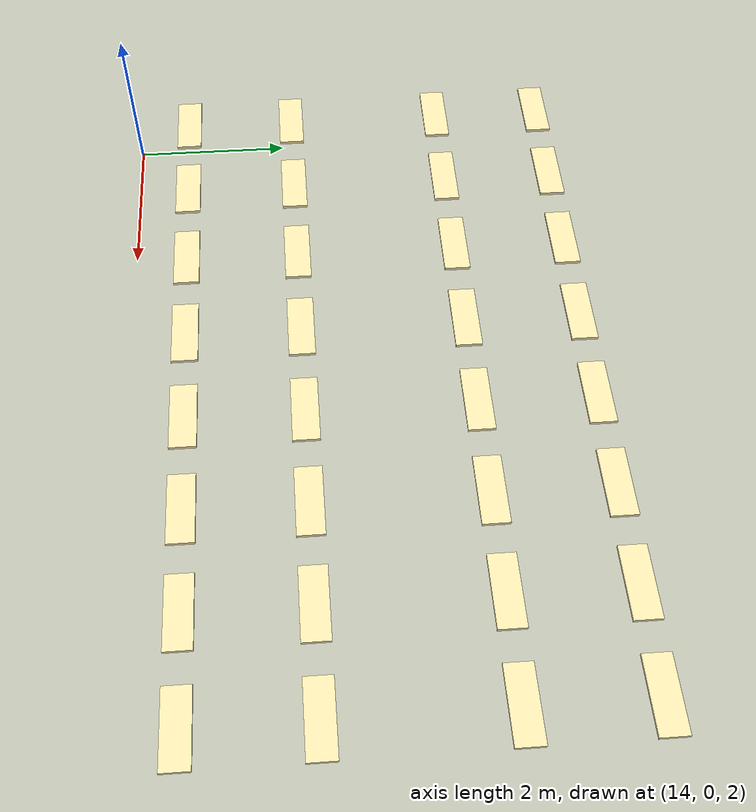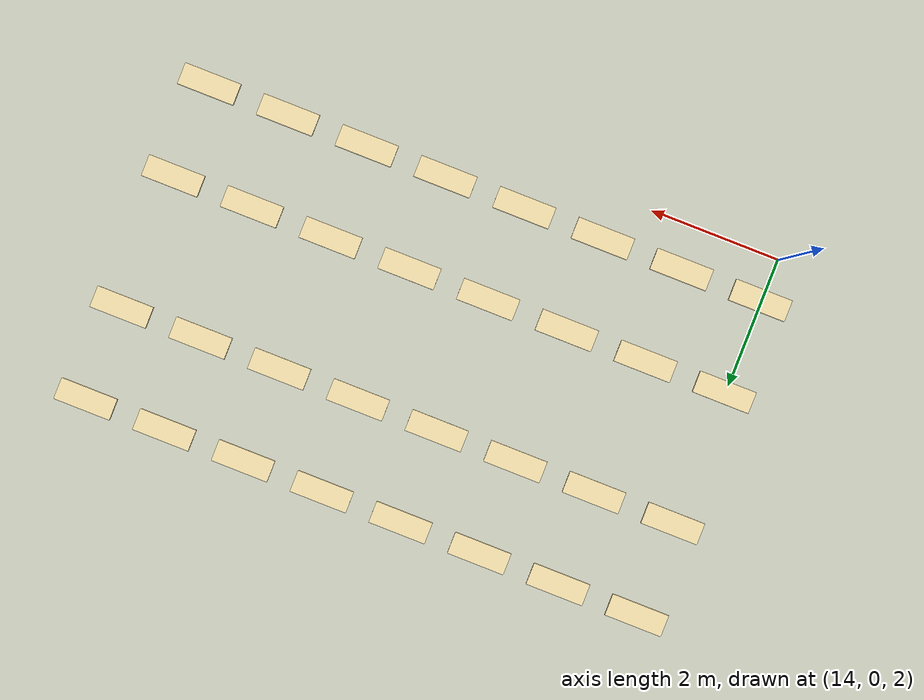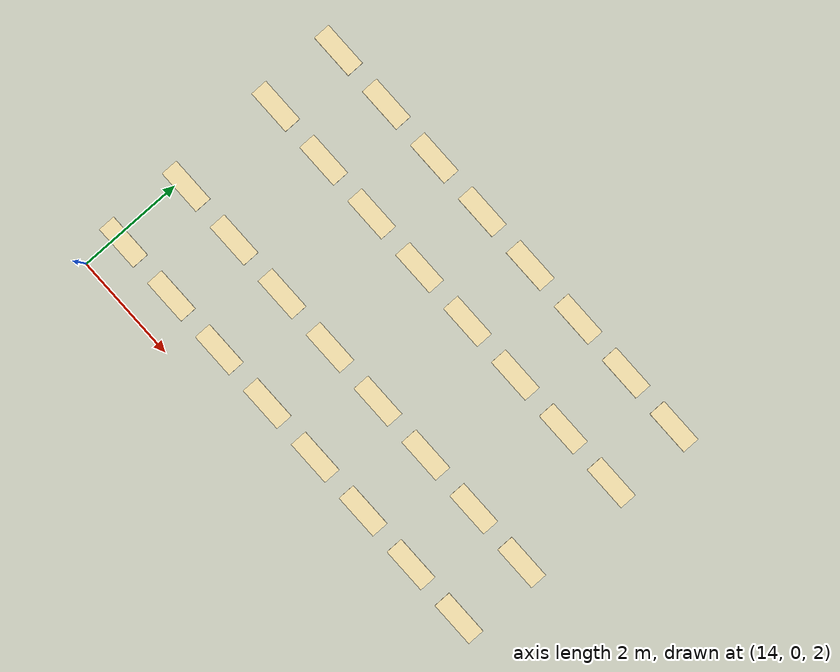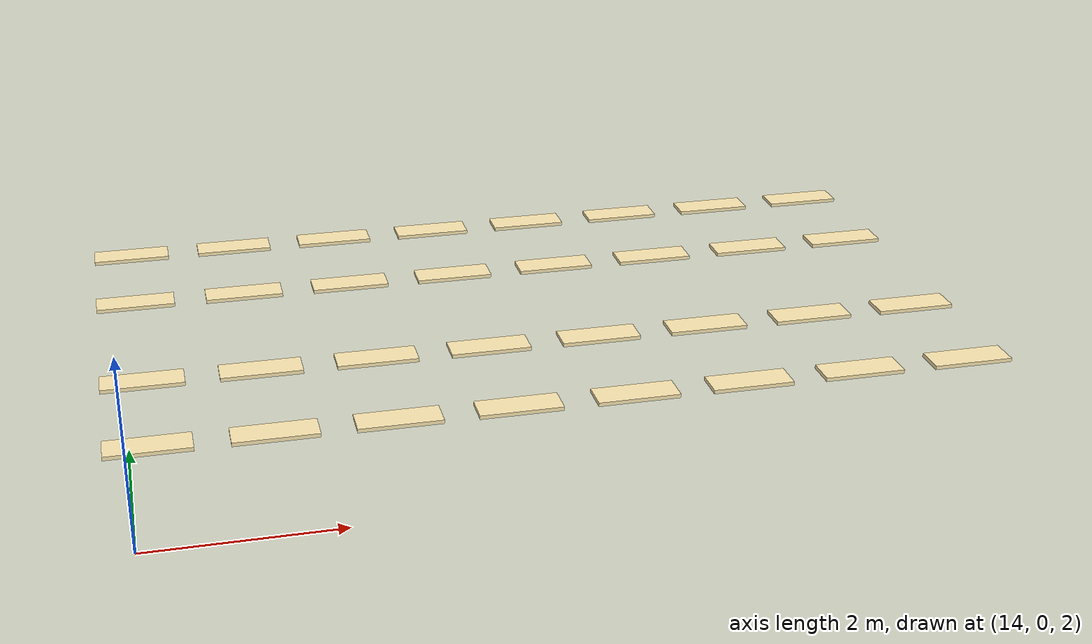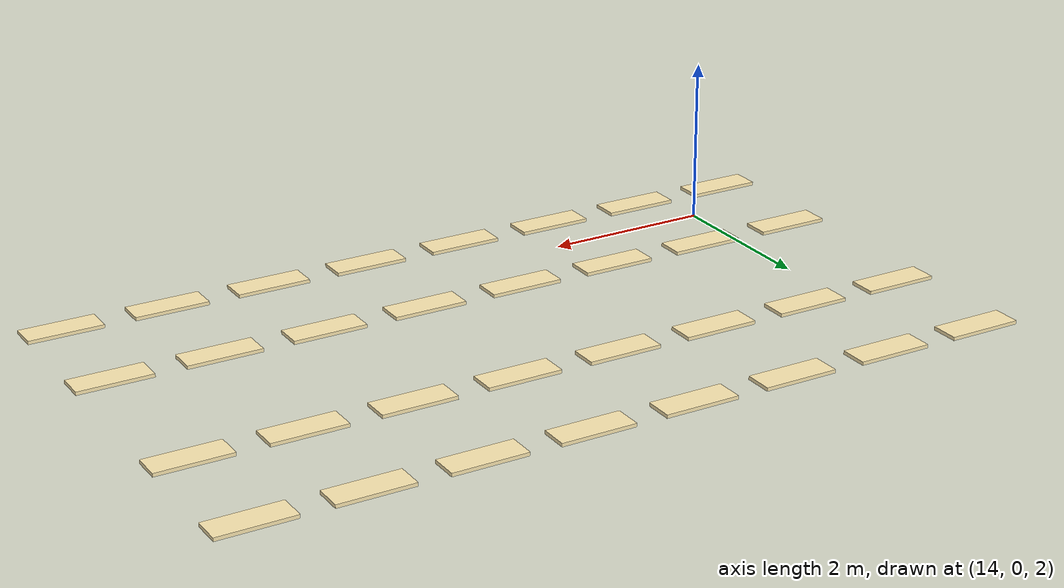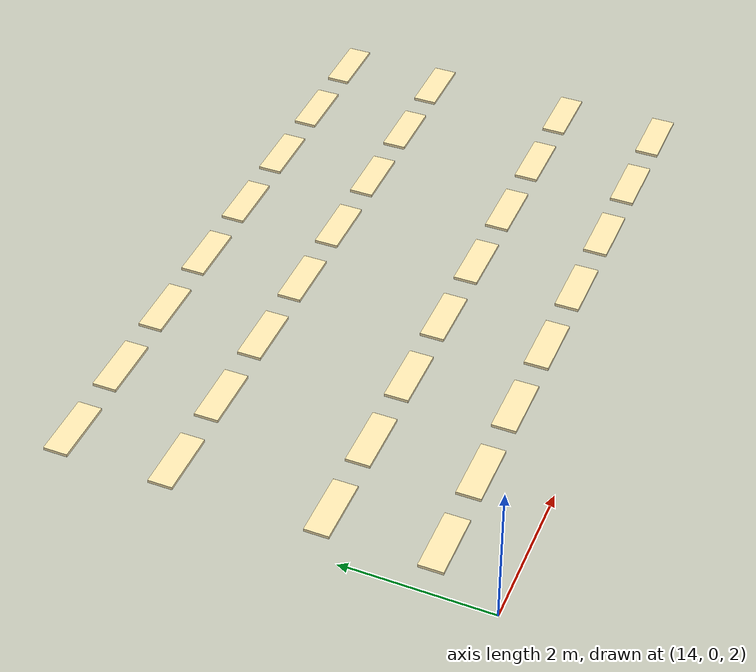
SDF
<sdf version="1.10">
 <world name="room_427">
  <model name="ceiling_lights_zone3">
   <static>true</static>
   <link name="ceiling_lights_zone3_r1_c1">
    <pose>14.2 0.75 2.70 0 0 0</pose>
    <visual name="visual">
     <geometry><box><size>0.85 0.32 0.04</size></box></geometry>
     <material>
      <ambient>1.0 0.92 0.7 1</ambient>
      <diffuse>1.0 0.92 0.7 1</diffuse>
      <emissive>1.0 0.92 0.7 1</emissive>
     </material>
    </visual>
   </link>
   <link name="ceiling_lights_zone3_r1_c2">
    <pose>14.2 2.15 2.70 0 0 0</pose>
    <visual name="visual">
     <geometry><box><size>0.85 0.32 0.04</size></box></geometry>
     <material>
      <ambient>1.0 0.92 0.7 1</ambient>
      <diffuse>1.0 0.92 0.7 1</diffuse>
      <emissive>1.0 0.92 0.7 1</emissive>
     </material>
    </visual>
   </link>
   <link name="ceiling_lights_zone3_r1_c3">
    <pose>14.2 4.15 2.70 0 0 0</pose>
    <visual name="visual">
     <geometry><box><size>0.85 0.32 0.04</size></box></geometry>
     <material>
      <ambient>1.0 0.92 0.7 1</ambient>
      <diffuse>1.0 0.92 0.7 1</diffuse>
      <emissive>1.0 0.92 0.7 1</emissive>
     </material>
    </visual>
   </link>
   <link name="ceiling_lights_zone3_r1_c4">
    <pose>14.2 5.55 2.70 0 0 0</pose>
    <visual name="visual">
     <geometry><box><size>0.85 0.32 0.04</size></box></geometry>
     <material>
      <ambient>1.0 0.92 0.7 1</ambient>
      <diffuse>1.0 0.92 0.7 1</diffuse>
      <emissive>1.0 0.92 0.7 1</emissive>
     </material>
    </visual>
   </link>
   <link name="ceiling_lights_zone3_r2_c1">
    <pose>15.4 0.75 2.70 0 0 0</pose>
    <visual name="visual">
     <geometry><box><size>0.85 0.32 0.04</size></box></geometry>
     <material>
      <ambient>1.0 0.92 0.7 1</ambient>
      <diffuse>1.0 0.92 0.7 1</diffuse>
      <emissive>1.0 0.92 0.7 1</emissive>
     </material>
    </visual>
   </link>
   <link name="ceiling_lights_zone3_r2_c2">
    <pose>15.4 2.15 2.70 0 0 0</pose>
    <visual name="visual">
     <geometry><box><size>0.85 0.32 0.04</size></box></geometry>
     <material>
      <ambient>1.0 0.92 0.7 1</ambient>
      <diffuse>1.0 0.92 0.7 1</diffuse>
      <emissive>1.0 0.92 0.7 1</emissive>
     </material>
    </visual>
   </link>
   <link name="ceiling_lights_zone3_r2_c3">
    <pose>15.4 4.15 2.70 0 0 0</pose>
    <visual name="visual">
     <geometry><box><size>0.85 0.32 0.04</size></box></geometry>
     <material>
      <ambient>1.0 0.92 0.7 1</ambient>
      <diffuse>1.0 0.92 0.7 1</diffuse>
      <emissive>1.0 0.92 0.7 1</emissive>
     </material>
    </visual>
   </link>
   <link name="ceiling_lights_zone3_r2_c4">
    <pose>15.4 5.55 2.70 0 0 0</pose>
    <visual name="visual">
     <geometry><box><size>0.85 0.32 0.04</size></box></geometry>
     <material>
      <ambient>1.0 0.92 0.7 1</ambient>
      <diffuse>1.0 0.92 0.7 1</diffuse>
      <emissive>1.0 0.92 0.7 1</emissive>
     </material>
    </visual>
   </link>
   <link name="ceiling_lights_zone3_r3_c1">
    <pose>16.6 0.75 2.70 0 0 0</pose>
    <visual name="visual">
     <geometry><box><size>0.85 0.32 0.04</size></box></geometry>
     <material>
      <ambient>1.0 0.92 0.7 1</ambient>
      <diffuse>1.0 0.92 0.7 1</diffuse>
      <emissive>1.0 0.92 0.7 1</emissive>
     </material>
    </visual>
   </link>
   <link name="ceiling_lights_zone3_r3_c2">
    <pose>16.6 2.15 2.70 0 0 0</pose>
    <visual name="visual">
     <geometry><box><size>0.85 0.32 0.04</size></box></geometry>
     <material>
      <ambient>1.0 0.92 0.7 1</ambient>
      <diffuse>1.0 0.92 0.7 1</diffuse>
      <emissive>1.0 0.92 0.7 1</emissive>
     </material>
    </visual>
   </link>
   <link name="ceiling_lights_zone3_r3_c3">
    <pose>16.6 4.15 2.70 0 0 0</pose>
    <visual name="visual">
     <geometry><box><size>0.85 0.32 0.04</size></box></geometry>
     <material>
      <ambient>1.0 0.92 0.7 1</ambient>
      <diffuse>1.0 0.92 0.7 1</diffuse>
      <emissive>1.0 0.92 0.7 1</emissive>
     </material>
    </visual>
   </link>
   <link name="ceiling_lights_zone3_r3_c4">
    <pose>16.6 5.55 2.70 0 0 0</pose>
    <visual name="visual">
     <geometry><box><size>0.85 0.32 0.04</size></box></geometry>
     <material>
      <ambient>1.0 0.92 0.7 1</ambient>
      <diffuse>1.0 0.92 0.7 1</diffuse>
      <emissive>1.0 0.92 0.7 1</emissive>
     </material>
    </visual>
   </link>
   <link name="ceiling_lights_zone3_r4_c1">
    <pose>17.8 0.75 2.70 0 0 0</pose>
    <visual name="visual">
     <geometry><box><size>0.85 0.32 0.04</size></box></geometry>
     <material>
      <ambient>1.0 0.92 0.7 1</ambient>
      <diffuse>1.0 0.92 0.7 1</diffuse>
      <emissive>1.0 0.92 0.7 1</emissive>
     </material>
    </visual>
   </link>
   <link name="ceiling_lights_zone3_r4_c2">
    <pose>17.8 2.15 2.70 0 0 0</pose>
    <visual name="visual">
     <geometry><box><size>0.85 0.32 0.04</size></box></geometry>
     <material>
      <ambient>1.0 0.92 0.7 1</ambient>
      <diffuse>1.0 0.92 0.7 1</diffuse>
      <emissive>1.0 0.92 0.7 1</emissive>
     </material>
    </visual>
   </link>
   <link name="ceiling_lights_zone3_r4_c3">
    <pose>17.8 4.15 2.70 0 0 0</pose>
    <visual name="visual">
     <geometry><box><size>0.85 0.32 0.04</size></box></geometry>
     <material>
      <ambient>1.0 0.92 0.7 1</ambient>
      <diffuse>1.0 0.92 0.7 1</diffuse>
      <emissive>1.0 0.92 0.7 1</emissive>
     </material>
    </visual>
   </link>
   <link name="ceiling_lights_zone3_r4_c4">
    <pose>17.8 5.55 2.70 0 0 0</pose>
    <visual name="visual">
     <geometry><box><size>0.85 0.32 0.04</size></box></geometry>
     <material>
      <ambient>1.0 0.92 0.7 1</ambient>
      <diffuse>1.0 0.92 0.7 1</diffuse>
      <emissive>1.0 0.92 0.7 1</emissive>
     </material>
    </visual>
   </link>
   <link name="ceiling_lights_zone3_r5_c1">
    <pose>19.0 0.75 2.70 0 0 0</pose>
    <visual name="visual">
     <geometry><box><size>0.85 0.32 0.04</size></box></geometry>
     <material>
      <ambient>1.0 0.92 0.7 1</ambient>
      <diffuse>1.0 0.92 0.7 1</diffuse>
      <emissive>1.0 0.92 0.7 1</emissive>
     </material>
    </visual>
   </link>
   <link name="ceiling_lights_zone3_r5_c2">
    <pose>19.0 2.15 2.70 0 0 0</pose>
    <visual name="visual">
     <geometry><box><size>0.85 0.32 0.04</size></box></geometry>
     <material>
      <ambient>1.0 0.92 0.7 1</ambient>
      <diffuse>1.0 0.92 0.7 1</diffuse>
      <emissive>1.0 0.92 0.7 1</emissive>
     </material>
    </visual>
   </link>
   <link name="ceiling_lights_zone3_r5_c3">
    <pose>19.0 4.15 2.70 0 0 0</pose>
    <visual name="visual">
     <geometry><box><size>0.85 0.32 0.04</size></box></geometry>
     <material>
      <ambient>1.0 0.92 0.7 1</ambient>
      <diffuse>1.0 0.92 0.7 1</diffuse>
      <emissive>1.0 0.92 0.7 1</emissive>
     </material>
    </visual>
   </link>
   <link name="ceiling_lights_zone3_r5_c4">
    <pose>19.0 5.55 2.70 0 0 0</pose>
    <visual name="visual">
     <geometry><box><size>0.85 0.32 0.04</size></box></geometry>
     <material>
      <ambient>1.0 0.92 0.7 1</ambient>
      <diffuse>1.0 0.92 0.7 1</diffuse>
      <emissive>1.0 0.92 0.7 1</emissive>
     </material>
    </visual>
   </link>
   <link name="ceiling_lights_zone3_r6_c1">
    <pose>20.2 0.75 2.70 0 0 0</pose>
    <visual name="visual">
     <geometry><box><size>0.85 0.32 0.04</size></box></geometry>
     <material>
      <ambient>1.0 0.92 0.7 1</ambient>
      <diffuse>1.0 0.92 0.7 1</diffuse>
      <emissive>1.0 0.92 0.7 1</emissive>
     </material>
    </visual>
   </link>
   <link name="ceiling_lights_zone3_r6_c2">
    <pose>20.2 2.15 2.70 0 0 0</pose>
    <visual name="visual">
     <geometry><box><size>0.85 0.32 0.04</size></box></geometry>
     <material>
      <ambient>1.0 0.92 0.7 1</ambient>
      <diffuse>1.0 0.92 0.7 1</diffuse>
      <emissive>1.0 0.92 0.7 1</emissive>
     </material>
    </visual>
   </link>
   <link name="ceiling_lights_zone3_r6_c3">
    <pose>20.2 4.15 2.70 0 0 0</pose>
    <visual name="visual">
     <geometry><box><size>0.85 0.32 0.04</size></box></geometry>
     <material>
      <ambient>1.0 0.92 0.7 1</ambient>
      <diffuse>1.0 0.92 0.7 1</diffuse>
      <emissive>1.0 0.92 0.7 1</emissive>
     </material>
    </visual>
   </link>
   <link name="ceiling_lights_zone3_r6_c4">
    <pose>20.2 5.55 2.70 0 0 0</pose>
    <visual name="visual">
     <geometry><box><size>0.85 0.32 0.04</size></box></geometry>
     <material>
      <ambient>1.0 0.92 0.7 1</ambient>
      <diffuse>1.0 0.92 0.7 1</diffuse>
      <emissive>1.0 0.92 0.7 1</emissive>
     </material>
    </visual>
   </link>
   <link name="ceiling_lights_zone3_r7_c1">
    <pose>21.4 0.75 2.70 0 0 0</pose>
    <visual name="visual">
     <geometry><box><size>0.85 0.32 0.04</size></box></geometry>
     <material>
      <ambient>1.0 0.92 0.7 1</ambient>
      <diffuse>1.0 0.92 0.7 1</diffuse>
      <emissive>1.0 0.92 0.7 1</emissive>
     </material>
    </visual>
   </link>
   <link name="ceiling_lights_zone3_r7_c2">
    <pose>21.4 2.15 2.70 0 0 0</pose>
    <visual name="visual">
     <geometry><box><size>0.85 0.32 0.04</size></box></geometry>
     <material>
      <ambient>1.0 0.92 0.7 1</ambient>
      <diffuse>1.0 0.92 0.7 1</diffuse>
      <emissive>1.0 0.92 0.7 1</emissive>
     </material>
    </visual>
   </link>
   <link name="ceiling_lights_zone3_r7_c3">
    <pose>21.4 4.15 2.70 0 0 0</pose>
    <visual name="visual">
     <geometry><box><size>0.85 0.32 0.04</size></box></geometry>
     <material>
      <ambient>1.0 0.92 0.7 1</ambient>
      <diffuse>1.0 0.92 0.7 1</diffuse>
      <emissive>1.0 0.92 0.7 1</emissive>
     </material>
    </visual>
   </link>
   <link name="ceiling_lights_zone3_r7_c4">
    <pose>21.4 5.55 2.70 0 0 0</pose>
    <visual name="visual">
     <geometry><box><size>0.85 0.32 0.04</size></box></geometry>
     <material>
      <ambient>1.0 0.92 0.7 1</ambient>
      <diffuse>1.0 0.92 0.7 1</diffuse>
      <emissive>1.0 0.92 0.7 1</emissive>
     </material>
    </visual>
   </link>
   <link name="ceiling_lights_zone3_r8_c1">
    <pose>22.6 0.75 2.70 0 0 0</pose>
    <visual name="visual">
     <geometry><box><size>0.85 0.32 0.04</size></box></geometry>
     <material>
      <ambient>1.0 0.92 0.7 1</ambient>
      <diffuse>1.0 0.92 0.7 1</diffuse>
      <emissive>1.0 0.92 0.7 1</emissive>
     </material>
    </visual>
   </link>
   <link name="ceiling_lights_zone3_r8_c2">
    <pose>22.6 2.15 2.70 0 0 0</pose>
    <visual name="visual">
     <geometry><box><size>0.85 0.32 0.04</size></box></geometry>
     <material>
      <ambient>1.0 0.92 0.7 1</ambient>
      <diffuse>1.0 0.92 0.7 1</diffuse>
      <emissive>1.0 0.92 0.7 1</emissive>
     </material>
    </visual>
   </link>
   <link name="ceiling_lights_zone3_r8_c3">
    <pose>22.6 4.15 2.70 0 0 0</pose>
    <visual name="visual">
     <geometry><box><size>0.85 0.32 0.04</size></box></geometry>
     <material>
      <ambient>1.0 0.92 0.7 1</ambient>
      <diffuse>1.0 0.92 0.7 1</diffuse>
      <emissive>1.0 0.92 0.7 1</emissive>
     </material>
    </visual>
   </link>
   <link name="ceiling_lights_zone3_r8_c4">
    <pose>22.6 5.55 2.70 0 0 0</pose>
    <visual name="visual">
     <geometry><box><size>0.85 0.32 0.04</size></box></geometry>
     <material>
      <ambient>1.0 0.92 0.7 1</ambient>
      <diffuse>1.0 0.92 0.7 1</diffuse>
      <emissive>1.0 0.92 0.7 1</emissive>
     </material>
    </visual>
   </link>
  </model>
 </world>
</sdf>
